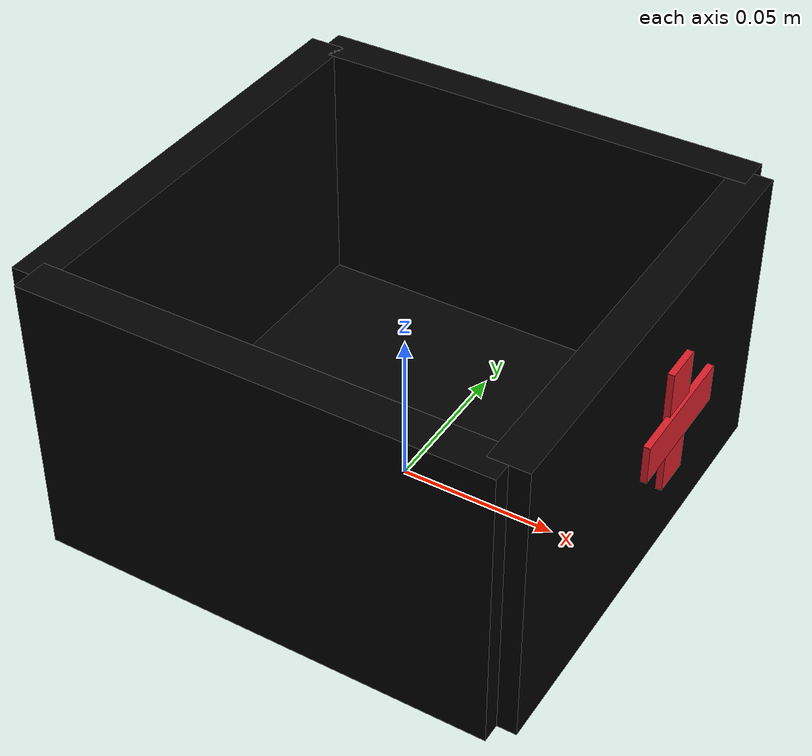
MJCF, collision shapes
<mujoco model="care_box">
  <asset>
    <texture name="care_basket_texture"
             file="../../stable_scanned_objects/basket/texture.png" type="2d"/>
    <material name="care_basket_material" texture="care_basket_texture"
              texrepeat="1 1" reflectance="0.25"/>
    <mesh name="care_basket_mesh"
          file="../../stable_scanned_objects/basket/visual/basket_vis.msh"
          scale="1.08 1.08 0.82"/>
  </asset>
  <worldbody>
    <body>
      <body name="object">
        <site name="contain_region" type="box" pos="0 0 0.050"
              quat="1 0 0 0" size="0.055 0.055 0.045" rgba="0 0 0 0"/>
        <geom name="basket_visual" type="mesh" mesh="care_basket_mesh"
              material="care_basket_material" rgba="0.90 0.96 1 1"
              contype="0" conaffinity="0" group="1"/>
        <geom name="basket_bottom" type="box" pos="0 0 0.006"
              size="0.072 0.072 0.006" rgba="0 0 0 0"
              density="5000" friction="1.5 0.02 0.001"
              solimp="0.99 0.99 0.001" solref="0.005 1" group="0"/>
        <geom name="basket_left_wall" type="box" pos="-0.072 0 0.046"
              size="0.006 0.072 0.046" rgba="0 0 0 0"
              density="5000" friction="1.5 0.02 0.001"
              solimp="0.99 0.99 0.001" solref="0.005 1" group="0"/>
        <geom name="basket_right_wall" type="box" pos="0.072 0 0.046"
              size="0.006 0.072 0.046" rgba="0 0 0 0"
              density="5000" friction="1.5 0.02 0.001"
              solimp="0.99 0.99 0.001" solref="0.005 1" group="0"/>
        <geom name="basket_front_wall" type="box" pos="0 -0.072 0.046"
              size="0.072 0.006 0.046" rgba="0 0 0 0"
              density="5000" friction="1.5 0.02 0.001"
              solimp="0.99 0.99 0.001" solref="0.005 1" group="0"/>
        <geom name="basket_back_wall" type="box" pos="0 0.072 0.046"
              size="0.072 0.006 0.046" rgba="0 0 0 0"
              density="5000" friction="1.5 0.02 0.001"
              solimp="0.99 0.99 0.001" solref="0.005 1" group="0"/>
        <!-- The agentview camera is on +X, so place the medical mark on
             the +X wall and make the cross span the Y-Z plane. -->
        <geom name="medical_mark_v" type="box" pos="0.084 0 0.058"
              size="0.001 0.006 0.020" rgba="0.85 0.12 0.16 1"
              contype="0" conaffinity="0" group="1"/>
        <geom name="medical_mark_h" type="box" pos="0.085 0 0.058"
              size="0.001 0.020 0.006" rgba="0.85 0.12 0.16 1"
              contype="0" conaffinity="0" group="1"/>
      </body>
      <site name="bottom_site" pos="0 0 -0.040" size="0.003" rgba="0 0 0 0"/>
      <site name="top_site" pos="0 0 0.122" size="0.003" rgba="0 0 0 0"/>
      <site name="horizontal_radius_site" pos="0.082 0.082 0.060"
            size="0.003" rgba="0 0 0 0"/>
    </body>
  </worldbody>
</mujoco>
